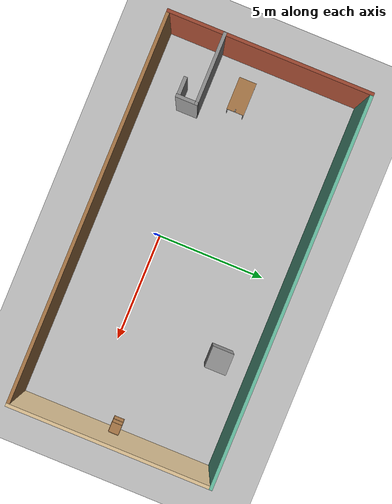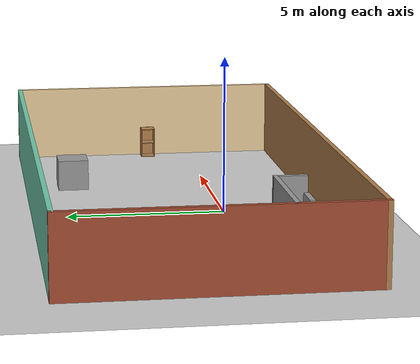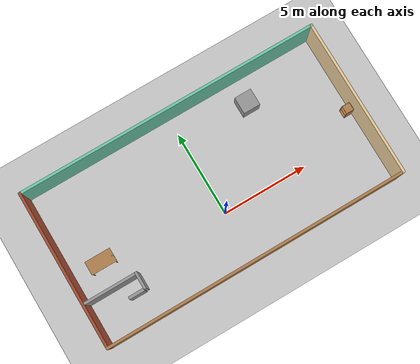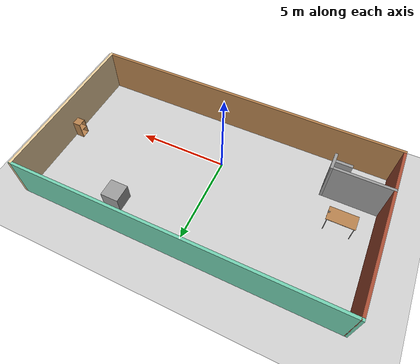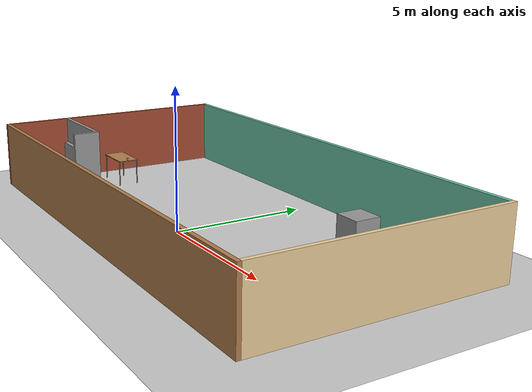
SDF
<sdf version="1.6">
 <world name="default">
  <scene><ambient>0.4 0.4 0.4 1</ambient><background>0.7 0.7 0.7 1</background><shadows>1</shadows></scene>
  <light name="sun" type="directional">
   <pose>0 0 10 0 -0 0</pose>
   <diffuse>0.8 0.8 0.8 1</diffuse>
   <specular>0.2 0.2 0.2 1</specular>
   <attenuation>
    <range>1000</range>
    <constant>0.9</constant>
    <linear>0.01</linear>
    <quadratic>0.001</quadratic>
   </attenuation>
   <direction>-0.5 0.1 -0.9</direction>
  </light>
  <model name="ground_plane">
   <static>1</static>
   <link name="link">
    <collision name="collision">
     <geometry><plane><normal>0 0 1</normal><size>100 100</size></plane></geometry>
     <surface>
      <contact><collide_bitmask>65535</collide_bitmask></contact>
      <friction><ode><mu>100</mu><mu2>50</mu2></ode></friction>
     </surface>
    </collision>
    <visual name="visual">
     <cast_shadows>0</cast_shadows>
     <geometry><plane><normal>0 0 1</normal><size>100 100</size></plane></geometry>
     <material>
      <script><uri>file://media/materials/scripts/gazebo.material</uri><name>Gazebo/Grey</name></script>
     </material>
    </visual>
   </link>
  </model>
  <physics name="default_physics" default="0" type="ode">
   <real_time_update_rate>1000</real_time_update_rate>
   <max_step_size>0.001</max_step_size>
   <real_time_factor>1</real_time_factor>
   <ode>
    <solver>
     <type>quick</type>
     <iters>150</iters>
     <precon_iters>0</precon_iters>
     <sor>1.4</sor>
     <use_dynamic_moi_rescaling>1</use_dynamic_moi_rescaling>
    </solver>
    <constraints>
     <cfm>1e-05</cfm>
     <erp>0.2</erp>
     <contact_max_correcting_vel>2000</contact_max_correcting_vel>
     <contact_surface_layer>0.01</contact_surface_layer>
    </constraints>
   </ode>
  </physics>
  <gravity>0 0 -9.8</gravity>
  <magnetic_field>6e-06 2.3e-05 -4.2e-05</magnetic_field>
  <atmosphere type="adiabatic"/>
  <spherical_coordinates>
   <surface_model>EARTH_WGS84</surface_model>
   <latitude_deg>0</latitude_deg>
   <longitude_deg>0</longitude_deg>
   <elevation>0</elevation>
   <heading_deg>0</heading_deg>
  </spherical_coordinates>
  <model name="livingroom.world">
   <pose>0.049546 1.49147 0 0 -0 0</pose>
   <link name="Door_0">
    <collision name="Door_0_Collision">
     <geometry><box><size>0.9 0.17 2</size></box></geometry>
     <pose>0 0 1 0 -0 0</pose>
    </collision>
    <visual name="Door_0_Visual">
     <pose>0 0 1 0 -0 0</pose>
     <geometry><box><size>0.9 0.17 2</size></box></geometry>
     <material>
      <script><uri>file://media/materials/scripts/gazebo.material</uri><name>Gazebo/Grey</name></script>
     </material>
    </visual>
    <pose>-6.21961 -2.9124 0 0 -0 0</pose>
   </link>
   <link name="Wall_10">
    <collision name="Wall_10_Collision">
     <geometry><box><size>3.25 0.15 2.5</size></box></geometry>
     <pose>0 0 1.25 0 -0 0</pose>
    </collision>
    <visual name="Wall_10_Visual">
     <pose>0 0 1.25 0 -0 0</pose>
     <geometry><box><size>3.25 0.15 2.5</size></box></geometry>
     <material>
      <script><uri>file://media/materials/scripts/gazebo.material</uri><name>Gazebo/Grey</name></script>
      <ambient>1 1 1 1</ambient>
     </material>
     <meta><layer>0</layer></meta>
    </visual>
    <pose>-7.23766 -2.03293 0 0 -0 0</pose>
   </link>
   <link name="Wall_11">
    <collision name="Wall_11_Collision">
     <geometry><box><size>1 0.15 2.5</size></box></geometry>
     <pose>0 0 1.25 0 -0 0</pose>
    </collision>
    <visual name="Wall_11_Visual">
     <pose>0 0 1.25 0 -0 0</pose>
     <geometry><box><size>1 0.15 2.5</size></box></geometry>
     <material>
      <script><uri>file://media/materials/scripts/gazebo.material</uri><name>Gazebo/Grey</name></script>
      <ambient>1 1 1 1</ambient>
     </material>
     <meta><layer>0</layer></meta>
    </visual>
    <pose>-5.68766 -2.45793 0 0 -0 -1.5708</pose>
   </link>
   <link name="Wall_5">
    <collision name="Wall_5_Collision">
     <geometry><box><size>9.25 0.15 2.5</size></box></geometry>
     <pose>0 0 1.25 0 -0 0</pose>
    </collision>
    <visual name="Wall_5_Visual">
     <pose>0 0 1.25 0 -0 0</pose>
     <geometry><box><size>9.25 0.15 2.5</size></box></geometry>
     <material>
      <script><uri>file://media/materials/scripts/gazebo.material</uri><name>Gazebo/Bricks</name></script>
      <ambient>1 1 1 1</ambient>
     </material>
     <meta><layer>0</layer></meta>
    </visual>
    <pose>-8.8 0 0 0 -0 1.5708</pose>
   </link>
   <link name="Wall_6">
    <collision name="Wall_6_Collision">
     <geometry><box><size>17.75 0.15 2.5</size></box></geometry>
     <pose>0 0 1.25 0 -0 0</pose>
    </collision>
    <visual name="Wall_6_Visual">
     <pose>0 0 1.25 0 -0 0</pose>
     <geometry><box><size>17.75 0.15 2.5</size></box></geometry>
     <material>
      <script><uri>file://media/materials/scripts/gazebo.material</uri><name>Gazebo/Grey</name></script>
      <ambient>0.435294 0.796078 0.67451 1</ambient>
     </material>
     <meta><layer>0</layer></meta>
    </visual>
    <pose>-0 4.55 0 0 -0 0</pose>
   </link>
   <link name="Wall_7">
    <collision name="Wall_7_Collision">
     <geometry><box><size>9.25 0.15 2.5</size></box></geometry>
     <pose>0 0 1.25 0 -0 0</pose>
    </collision>
    <visual name="Wall_7_Visual">
     <pose>0 0 1.25 0 -0 0</pose>
     <geometry><box><size>9.25 0.15 2.5</size></box></geometry>
     <material>
      <script><uri>file://media/materials/scripts/gazebo.material</uri><name>Gazebo/Grey</name></script>
      <ambient>0.921569 0.807843 0.615686 1</ambient>
     </material>
     <meta><layer>0</layer></meta>
    </visual>
    <pose>8.8 0 0 0 -0 -1.5708</pose>
   </link>
   <link name="Wall_8">
    <collision name="Wall_8_Collision">
     <geometry><box><size>17.75 0.15 2.5</size></box></geometry>
     <pose>0 0 1.25 0 -0 0</pose>
    </collision>
    <visual name="Wall_8_Visual">
     <pose>0 0 1.25 0 -0 0</pose>
     <geometry><box><size>17.75 0.15 2.5</size></box></geometry>
     <material>
      <script><uri>file://media/materials/scripts/gazebo.material</uri><name>Gazebo/Wood</name></script>
      <ambient>1 1 1 1</ambient>
     </material>
     <meta><layer>0</layer></meta>
    </visual>
    <pose>-0 -4.55 0 0 -0 3.14159</pose>
   </link>
   <static>1</static>
  </model>
  <model name="table">
   <static>1</static>
   <link name="link">
    <collision name="surface">
     <pose>0 0 1 0 -0 0</pose>
     <geometry><box><size>1.5 0.8 0.03</size></box></geometry>
     <surface><friction><ode><mu>0.6</mu><mu2>0.6</mu2></ode></friction></surface>
    </collision>
    <visual name="visual1">
     <pose>0 0 1 0 -0 0</pose>
     <geometry><box><size>1.5 0.8 0.03</size></box></geometry>
     <material>
      <script><uri>file://media/materials/scripts/gazebo.material</uri><name>Gazebo/Wood</name></script>
     </material>
    </visual>
    <collision name="front_left_leg">
     <pose>0.68 0.38 0.5 0 -0 0</pose>
     <geometry><cylinder><radius>0.02</radius><length>1</length></cylinder></geometry>
    </collision>
    <visual name="front_left_leg">
     <pose>0.68 0.38 0.5 0 -0 0</pose>
     <geometry><cylinder><radius>0.02</radius><length>1</length></cylinder></geometry>
     <material>
      <script><uri>file://media/materials/scripts/gazebo.material</uri><name>Gazebo/Grey</name></script>
     </material>
    </visual>
    <collision name="front_right_leg">
     <pose>0.68 -0.38 0.5 0 -0 0</pose>
     <geometry><cylinder><radius>0.02</radius><length>1</length></cylinder></geometry>
    </collision>
    <visual name="front_right_leg">
     <pose>0.68 -0.38 0.5 0 -0 0</pose>
     <geometry><cylinder><radius>0.02</radius><length>1</length></cylinder></geometry>
     <material>
      <script><uri>file://media/materials/scripts/gazebo.material</uri><name>Gazebo/Grey</name></script>
     </material>
    </visual>
    <collision name="back_right_leg">
     <pose>-0.68 -0.38 0.5 0 -0 0</pose>
     <geometry><cylinder><radius>0.02</radius><length>1</length></cylinder></geometry>
    </collision>
    <visual name="back_right_leg">
     <pose>-0.68 -0.38 0.5 0 -0 0</pose>
     <geometry><cylinder><radius>0.02</radius><length>1</length></cylinder></geometry>
     <material>
      <script><uri>file://media/materials/scripts/gazebo.material</uri><name>Gazebo/Grey</name></script>
     </material>
    </visual>
    <collision name="back_left_leg">
     <pose>-0.68 0.38 0.5 0 -0 0</pose>
     <geometry><cylinder><radius>0.02</radius><length>1</length></cylinder></geometry>
    </collision>
    <visual name="back_left_leg">
     <pose>-0.68 0.38 0.5 0 -0 0</pose>
     <geometry><cylinder><radius>0.02</radius><length>1</length></cylinder></geometry>
     <material>
      <script><uri>file://media/materials/scripts/gazebo.material</uri><name>Gazebo/Grey</name></script>
     </material>
    </visual>
   </link>
   <pose>-6.99836 1.05129 0 0 -0 0</pose>
  </model>
  <model name="camera">
   <pose>-6.30184 1.0282 1.06499 1.57089 -0 0</pose>
   <link name="link">
    <inertial>
     <mass>0.1</mass>
     <inertia>
      <ixx>0.000166667</ixx>
      <iyy>0.000166667</iyy>
      <izz>0.000166667</izz>
      <ixy>0</ixy>
      <ixz>0</ixz>
      <iyz>0</iyz>
     </inertia>
    </inertial>
    <collision name="collision"><geometry><box><size>0.1 0.1 0.0399797</size></box></geometry></collision>
    <visual name="visual"><geometry><box><size>0.1 0.1 0.0399797</size></box></geometry></visual>
    <sensor name="camera_3" type="depth">
     <always_on>1</always_on>
     <visualize>0</visualize>
     <camera name="camera_3">
      <horizontal_fov>1.3439</horizontal_fov>
      <image><width>1920</width><height>1080</height><format>R8G8B8</format></image>
      <depth_camera><output>depths</output></depth_camera>
      <clip><near>0.03</near><far>100</far></clip>
     </camera>
     <plugin name="camera_controller_3" filename="libgazebo_ros_openni_kinect.so">
      <baseline>0.2</baseline>
      <alwaysOn>1</alwaysOn>
      <updateRate>30.0</updateRate>
      <cameraName>camera_3</cameraName>
      <frameName>camera_rgb_optical_frame_3</frameName>
      <imageTopicName>rgb/image_raw_3</imageTopicName>
      <depthImageTopicName>depth/image_raw</depthImageTopicName>
      <pointCloudTopicName>depth/points</pointCloudTopicName>
      <cameraInfoTopicName>rgb/camera_info_3</cameraInfoTopicName>
      <depthImageCameraInfoTopicName>depth/camera_info_3</depthImageCameraInfoTopicName>
      <pointCloudCutoff>0.4</pointCloudCutoff>
      <hackBaseline>0.07</hackBaseline>
      <distortionK1>0.0</distortionK1>
      <distortionK2>0.0</distortionK2>
      <distortionK3>0.0</distortionK3>
      <distortionT1>0.0</distortionT1>
      <distortionT2>0.0</distortionT2>
      <CxPrime>0.0</CxPrime>
      <Cx>0.0</Cx>
      <Cy>0.0</Cy>
      <focalLength>0</focalLength>
      <hackBaseline>0</hackBaseline>
      <robotNamespace>/</robotNamespace>
     </plugin>
     <pose>0.069 -0.047 0.117 0 -0 0</pose>
    </sensor>
   </link>
  </model>
  <model name="unit_box">
   <pose>4.06077 4.52563 0.5 0 -0 0</pose>
   <link name="link">
    <inertial>
     <mass>1</mass>
     <inertia>
      <ixx>0.166667</ixx>
      <ixy>0</ixy>
      <ixz>0</ixz>
      <iyy>0.166667</iyy>
      <iyz>0</iyz>
      <izz>0.166667</izz>
     </inertia>
    </inertial>
    <collision name="collision"><geometry><box><size>1 1 1</size></box></geometry></collision>
    <visual name="visual">
     <geometry><box><size>1 1 1</size></box></geometry>
     <material>
      <script><name>Gazebo/Grey</name><uri>file://media/materials/scripts/gazebo.material</uri></script>
     </material>
    </visual>
   </link>
  </model>
  <model name="cabinet">
   <static>1</static>
   <link name="cabinet_bottom_plate">
    <inertial>
     <pose>0 0 -1 0 -0 0</pose>
     <inertia><ixx>2.05</ixx><ixy>0</ixy><ixz>0</ixz><iyy>2.05</iyy><iyz>0</iyz><izz>2.05</izz></inertia>
     <mass>25</mass>
    </inertial>
    <collision name="cabinet_bottom_plate_geom">
     <pose>0 0 0.01 0 -0 0</pose>
     <geometry><box><size>0.45 0.45 0.02</size></box></geometry>
    </collision>
    <visual name="cabinet_bottom_plate_geom_visual">
     <pose>0 0 0.01 0 -0 0</pose>
     <geometry><box><size>0.45 0.45 0.02</size></box></geometry>
     <material>
      <script><uri>file://media/materials/scripts/gazebo.material</uri><name>Gazebo/Wood</name></script>
     </material>
    </visual>
    <collision name="cabinet_bottom_plate_geom_cabinet_back_plate">
     <pose>0.235 0 0.51 0 -0 0</pose>
     <geometry><box><size>0.02 0.45 1.02</size></box></geometry>
    </collision>
    <visual name="cabinet_bottom_plate_geom_cabinet_back_plate_visual">
     <pose>0.235 0 0.51 0 -0 0</pose>
     <geometry><box><size>0.02 0.45 1.02</size></box></geometry>
     <material>
      <script><uri>file://media/materials/scripts/gazebo.material</uri><name>Gazebo/Wood</name></script>
     </material>
    </visual>
    <collision name="cabinet_bottom_plate_geom_cabinet_left_plate">
     <pose>0 0.235 0.51 0 -0 0</pose>
     <geometry><box><size>0.45 0.02 1.02</size></box></geometry>
    </collision>
    <visual name="cabinet_bottom_plate_geom_cabinet_left_plate_visual">
     <pose>0 0.235 0.51 0 -0 0</pose>
     <geometry><box><size>0.45 0.02 1.02</size></box></geometry>
     <material>
      <script><uri>file://media/materials/scripts/gazebo.material</uri><name>Gazebo/Wood</name></script>
     </material>
    </visual>
    <collision name="cabinet_bottom_plate_geom_cabinet_middle_plate">
     <pose>0 0 0.51 0 -0 0</pose>
     <geometry><box><size>0.45 0.45 0.02</size></box></geometry>
    </collision>
    <visual name="cabinet_bottom_plate_geom_cabinet_middle_plate_visual">
     <pose>0 0 0.51 0 -0 0</pose>
     <geometry><box><size>0.45 0.45 0.02</size></box></geometry>
     <material>
      <script><uri>file://media/materials/scripts/gazebo.material</uri><name>Gazebo/Wood</name></script>
     </material>
    </visual>
    <collision name="cabinet_bottom_plate_geom_cabinet_right_plate">
     <pose>0 -0.235 0.51 0 -0 0</pose>
     <geometry><box><size>0.45 0.02 1.02</size></box></geometry>
    </collision>
    <visual name="cabinet_bottom_plate_geom_cabinet_right_plate_visual">
     <pose>0 -0.235 0.51 0 -0 0</pose>
     <geometry><box><size>0.45 0.02 1.02</size></box></geometry>
     <material>
      <script><uri>file://media/materials/scripts/gazebo.material</uri><name>Gazebo/Wood</name></script>
     </material>
    </visual>
    <collision name="cabinet_bottom_plate_geom_cabinet_top_plate">
     <pose>0 0 1.01 0 -0 0</pose>
     <geometry><box><size>0.45 0.45 0.02</size></box></geometry>
    </collision>
    <visual name="cabinet_bottom_plate_geom_cabinet_top_plate_visual">
     <pose>0 0 1.01 0 -0 0</pose>
     <geometry><box><size>0.45 0.45 0.02</size></box></geometry>
     <material>
      <script><uri>file://media/materials/scripts/gazebo.material</uri><name>Gazebo/Wood</name></script>
     </material>
    </visual>
   </link>
   <pose>8.51195 1.43009 0 0 -0 0</pose>
  </model>
 </world>
</sdf>
